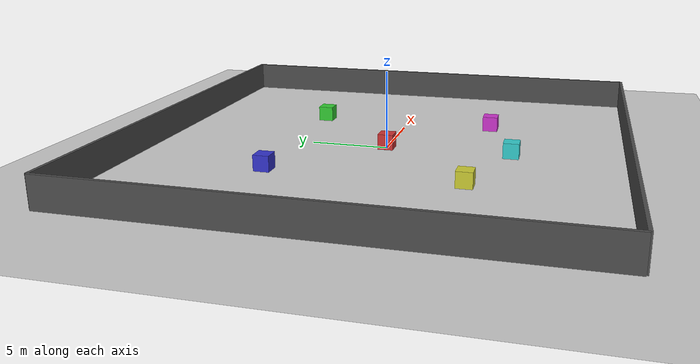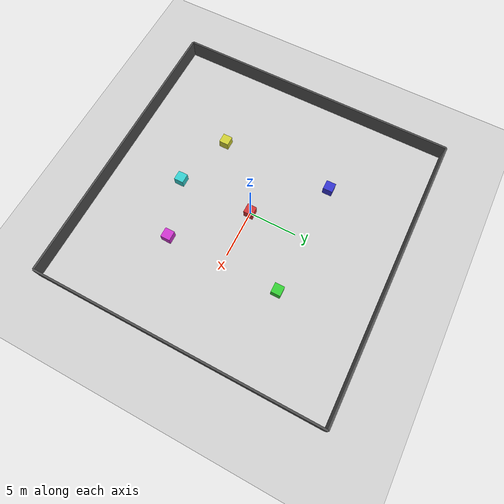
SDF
<?xml version="1.0" ?>
<sdf version="1.6">
  <world name="default">

    <!-- ─────────── ESCENA: iluminación & desactivar sombras ─────────── -->
    <scene>
      <ambient>0.4 0.4 0.4 1</ambient>
      <background>0.7 0.7 0.7 1</background>
      <shadows>false</shadows>
    </scene>

    <!-- ─────────── PLUGINS ROS–GAZEBO ─────────── -->
    <plugin name="gazebo_ros_api_plugin" filename="libgazebo_ros_api_plugin.so"/>
    <plugin name="gazebo_ros_factory"  filename="libgazebo_ros_factory.so"/>
    <plugin name="gazebo_ros_state"    filename="libgazebo_ros_state.so"/>

    <!-- ─────────── SOL y SUELO ─────────── -->
    <include><uri>model://sun</uri></include>
    <include><uri>model://ground_plane</uri></include>

    <!-- ─────────── PAREDES 30x30 ─────────── -->
    <!-- Izquierda -->
    <model name="wall_left">
      <static>true</static>
      <pose>-15 0 1 0 0 0</pose>
      <link name="link">
        <collision name="collision">
          <geometry>
            <box><size>0.2 30 2</size></box>
          </geometry>
        </collision>
        <visual name="visual">
          <geometry>
            <box><size>0.2 30 2</size></box>
          </geometry>
          <material>
            <ambient>0.3 0.3 0.3 1</ambient>
            <diffuse>0.3 0.3 0.3 1</diffuse>
          </material>
        </visual>
      </link>
    </model>

    <!-- Derecha -->
    <model name="wall_right">
      <static>true</static>
      <pose>15 0 1 0 0 0</pose>
      <link name="link">
        <collision name="collision">
          <geometry>
            <box><size>0.2 30 2</size></box>
          </geometry>
        </collision>
        <visual name="visual">
          <geometry>
            <box><size>0.2 30 2</size></box>
          </geometry>
          <material>
            <ambient>0.3 0.3 0.3 1</ambient>
            <diffuse>0.3 0.3 0.3 1</diffuse>
          </material>
        </visual>
      </link>
    </model>

    <!-- Inferior -->
    <model name="wall_bottom">
      <static>true</static>
      <pose>0 -15 1 0 0 0</pose>
      <link name="link">
        <collision name="collision">
          <geometry>
            <box><size>30 0.2 2</size></box>
          </geometry>
        </collision>
        <visual name="visual">
          <geometry>
            <box><size>30 0.2 2</size></box>
          </geometry>
          <material>
            <ambient>0.3 0.3 0.3 1</ambient>
            <diffuse>0.3 0.3 0.3 1</diffuse>
          </material>
        </visual>
      </link>
    </model>

    <!-- Superior -->
    <model name="wall_top">
      <static>true</static>
      <pose>0 15 1 0 0 0</pose>
      <link name="link">
        <collision name="collision">
          <geometry>
            <box><size>30 0.2 2</size></box>
          </geometry>
        </collision>
        <visual name="visual">
          <geometry>
            <box><size>30 0.2 2</size></box>
          </geometry>
          <material>
            <ambient>0.3 0.3 0.3 1</ambient>
            <diffuse>0.3 0.3 0.3 1</diffuse>
          </material>
        </visual>
      </link>
    </model>

    <!-- 📦 CAJAS DINÁMICAS SIMPLES (SIN PLUGINS - MOVIDAS POR EL ENTORNO PYTHON)      -->

    <!-- 🔄 CAJA 00: Movimiento horizontal (roja) -->
    <model name="box_00">
      <pose>0 0 0.5 0 0 0</pose>
      <static>false</static>

      <link name="link">
        <inertial>
          <mass>1.0</mass>
          <inertia>
            <ixx>0.167</ixx><iyy>0.167</iyy><izz>0.167</izz>
            <ixy>0</ixy><ixz>0</ixz><iyz>0</iyz>
          </inertia>
        </inertial>

        <visual name="visual">
          <geometry>
            <box><size>1 1 1</size></box>
          </geometry>
          <material>
            <ambient>0.8 0.2 0.2 1</ambient>  <!-- Rojo -->
            <diffuse>0.8 0.2 0.2 1</diffuse>
          </material>
        </visual>

        <collision name="collision">
          <geometry>
            <box><size>1 1 1</size></box>
          </geometry>
        </collision>
      </link>
    </model>

    <!-- 🔄 CAJA 01: Movimiento vertical (verde) -->
    <model name="box_01">
      <pose>6 6 0.5 0 0 0</pose>
      <static>false</static>

      <link name="link">
        <inertial>
          <mass>1.0</mass>
          <inertia>
            <ixx>0.167</ixx><iyy>0.167</iyy><izz>0.167</izz>
            <ixy>0</ixy><ixz>0</ixz><iyz>0</iyz>
          </inertia>
        </inertial>

        <visual name="visual">
          <geometry>
            <box><size>1 1 1</size></box>
          </geometry>
          <material>
            <ambient>0.2 0.8 0.2 1</ambient>  <!-- Verde -->
            <diffuse>0.2 0.8 0.2 1</diffuse>
          </material>
        </visual>

        <collision name="collision">
          <geometry>
            <box><size>1 1 1</size></box>
          </geometry>
        </collision>
      </link>
    </model>

    <!-- 🔄 CAJA 02: Movimiento diagonal (azul) -->
    <model name="box_02">
      <pose>-6 6 0.5 0 0 0</pose>
      <static>false</static>

      <link name="link">
        <inertial>
          <mass>1.0</mass>
          <inertia>
            <ixx>0.167</ixx><iyy>0.167</iyy><izz>0.167</izz>
            <ixy>0</ixy><ixz>0</ixz><iyz>0</iyz>
          </inertia>
        </inertial>

        <visual name="visual">
          <geometry>
            <box><size>1 1 1</size></box>
          </geometry>
          <material>
            <ambient>0.2 0.2 0.8 1</ambient>  <!-- Azul -->
            <diffuse>0.2 0.2 0.8 1</diffuse>
          </material>
        </visual>

        <collision name="collision">
          <geometry>
            <box><size>1 1 1</size></box>
          </geometry>
        </collision>
      </link>
    </model>

    <!-- 🔄 CAJA 03: Movimiento circular (amarillo) -->
    <model name="box_03">
      <pose>-6 -6 0.5 0 0 0</pose>
      <static>false</static>

      <link name="link">
        <inertial>
          <mass>1.0</mass>
          <inertia>
            <ixx>0.167</ixx><iyy>0.167</iyy><izz>0.167</izz>
            <ixy>0</ixy><ixz>0</ixz><iyz>0</iyz>
          </inertia>
        </inertial>

        <visual name="visual">
          <geometry>
            <box><size>1 1 1</size></box>
          </geometry>
          <material>
            <ambient>0.8 0.8 0.2 1</ambient>  <!-- Amarillo -->
            <diffuse>0.8 0.8 0.2 1</diffuse>
          </material>
        </visual>

        <collision name="collision">
          <geometry>
            <box><size>1 1 1</size></box>
          </geometry>
        </collision>
      </link>
    </model>

    <!-- 🔄 CAJA 04: Segundo movimiento horizontal (magenta) -->
    <model name="box_04">
      <pose>6 -6 0.5 0 0 0</pose>
      <static>false</static>

      <link name="link">
        <inertial>
          <mass>1.0</mass>
          <inertia>
            <ixx>0.167</ixx><iyy>0.167</iyy><izz>0.167</izz>
            <ixy>0</ixy><ixz>0</ixz><iyz>0</iyz>
          </inertia>
        </inertial>

        <visual name="visual">
          <geometry>
            <box><size>1 1 1</size></box>
          </geometry>
          <material>
            <ambient>0.8 0.2 0.8 1</ambient>  <!-- Magenta -->
            <diffuse>0.8 0.2 0.8 1</diffuse>
          </material>
        </visual>

        <collision name="collision">
          <geometry>
            <box><size>1 1 1</size></box>
          </geometry>
        </collision>
      </link>
    </model>

    <!-- 🔄 CAJA 05: Segundo movimiento vertical (cian) -->
    <model name="box_05">
      <pose>0 -8 0.5 0 0 0</pose>
      <static>false</static>

      <link name="link">
        <inertial>
          <mass>1.0</mass>
          <inertia>
            <ixx>0.167</ixx><iyy>0.167</iyy><izz>0.167</izz>
            <ixy>0</ixy><ixz>0</ixz><iyz>0</iyz>
          </inertia>
        </inertial>

        <visual name="visual">
          <geometry>
            <box><size>1 1 1</size></box>
          </geometry>
          <material>
            <ambient>0.2 0.8 0.8 1</ambient>  <!-- Cian -->
            <diffuse>0.2 0.8 0.8 1</diffuse>
          </material>
        </visual>

        <collision name="collision">
          <geometry>
            <box><size>1 1 1</size></box>
          </geometry>
        </collision>
      </link>
    </model>

    <!-- ─────────── FÍSICA ─────────── -->
    <physics name="default_physics" type="ode">
      <real_time_factor>1.0</real_time_factor>
      <real_time_update_rate>1000</real_time_update_rate>
      <max_step_size>0.004</max_step_size>
      <use_real_time>false</use_real_time>
      <ode>
        <solver><type>quick</type><iters>40</iters><sor>1.3</sor></solver>
        <constraints><cfm>1e-5</cfm><erp>0.3</erp></constraints>
      </ode>
    </physics>

    <!-- ─────────── GUI ─────────── -->
    <gui fullscreen="0">
      <camera name="user_camera">
        <pose>0 -25 20 0 0.6 1.57</pose>
        <view_controller>orbit</view_controller>
        <projection_type>perspective</projection_type>
      </camera>
    </gui>

  </world>
</sdf>
